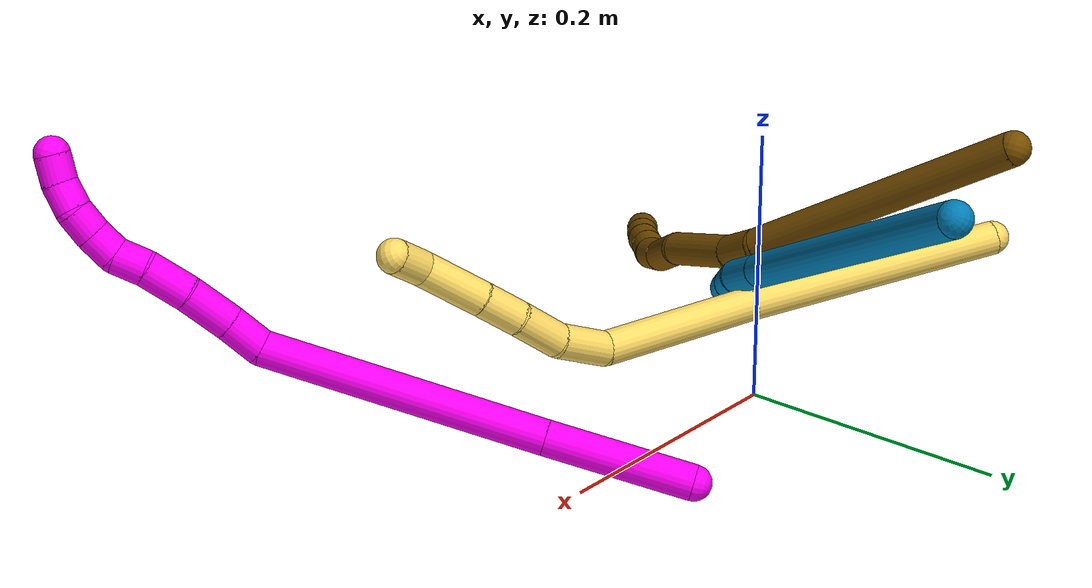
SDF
<sdf version="1.7">
 <world name="default">
  <model name="5">
   <static>0</static>
   <link name="5">
    <collision name="collision-cylinder-e_1_1_4">
     <pose>0.079366 -0.005565 -0.056115 3.04274 0.953058 2.95053</pose>
     <geometry><cylinder><radius>0.0125</radius><length>0.194719</length></cylinder></geometry>
     <surface>
      <friction><ode><mu>1.16</mu><mu2>1.16</mu2><slip1>0</slip1><slip2>0</slip2></ode></friction>
      <contact><ode><kp>1e+06</kp><kd>1</kd><max_vel>0</max_vel><min_depth>0.001</min_depth></ode></contact>
     </surface>
    </collision>
    <visual name="visual-cylinder-e_1_1_4">
     <pose>0.079366 -0.005565 -0.056115 3.04274 0.953058 2.95053</pose>
     <geometry><cylinder><radius>0.0125</radius><length>0.194719</length></cylinder></geometry>
     <material><ambient>1 0.858824 0.4 1</ambient></material>
    </visual>
    <collision name="collision-cylinder-e_2_4_5">
     <pose>0.213165 -0.012029 -0.139384 3.1085 1.10783 3.0881</pose>
     <geometry><cylinder><radius>0.0125</radius><length>0.121674</length></cylinder></geometry>
     <surface>
      <friction><ode><mu>1.16</mu><mu2>1.16</mu2><slip1>0</slip1><slip2>0</slip2></ode></friction>
      <contact><ode><kp>1e+06</kp><kd>1</kd><max_vel>0</max_vel><min_depth>0.001</min_depth></ode></contact>
     </surface>
    </collision>
    <visual name="visual-cylinder-e_2_4_5">
     <pose>0.213165 -0.012029 -0.139384 3.1085 1.10783 3.0881</pose>
     <geometry><cylinder><radius>0.0125</radius><length>0.121674</length></cylinder></geometry>
     <material><ambient>1 0.858824 0.4 1</ambient></material>
    </visual>
    <collision name="collision-cylinder-e_3_5_6">
     <pose>0.286518 -0.020293 -0.169556 1.95944 1.17261 1.56046</pose>
     <geometry><cylinder><radius>0.0125</radius><length>0.041051</length></cylinder></geometry>
     <surface>
      <friction><ode><mu>1.16</mu><mu2>1.16</mu2><slip1>0</slip1><slip2>0</slip2></ode></friction>
      <contact><ode><kp>1e+06</kp><kd>1</kd><max_vel>0</max_vel><min_depth>0.001</min_depth></ode></contact>
     </surface>
    </collision>
    <visual name="visual-cylinder-e_3_5_6">
     <pose>0.286518 -0.020293 -0.169556 1.95944 1.17261 1.56046</pose>
     <geometry><cylinder><radius>0.0125</radius><length>0.041051</length></cylinder></geometry>
     <material><ambient>1 0.858824 0.4 1</ambient></material>
    </visual>
    <collision name="collision-cylinder-e_4_6_7">
     <pose>0.31993 -0.038729 -0.173792 1.68058 0.915542 1.00563</pose>
     <geometry><cylinder><radius>0.0125</radius><length>0.036556</length></cylinder></geometry>
     <surface>
      <friction><ode><mu>1.16</mu><mu2>1.16</mu2><slip1>0</slip1><slip2>0</slip2></ode></friction>
      <contact><ode><kp>1e+06</kp><kd>1</kd><max_vel>0</max_vel><min_depth>0.001</min_depth></ode></contact>
     </surface>
    </collision>
    <visual name="visual-cylinder-e_4_6_7">
     <pose>0.31993 -0.038729 -0.173792 1.68058 0.915542 1.00563</pose>
     <geometry><cylinder><radius>0.0125</radius><length>0.036556</length></cylinder></geometry>
     <material><ambient>1 0.858824 0.4 1</ambient></material>
    </visual>
    <collision name="collision-cylinder-e_5_7_8">
     <pose>0.345734 -0.059718 -0.177914 1.85543 0.830538 1.06368</pose>
     <geometry><cylinder><radius>0.0125</radius><length>0.030642</length></cylinder></geometry>
     <surface>
      <friction><ode><mu>1.16</mu><mu2>1.16</mu2><slip1>0</slip1><slip2>0</slip2></ode></friction>
      <contact><ode><kp>1e+06</kp><kd>1</kd><max_vel>0</max_vel><min_depth>0.001</min_depth></ode></contact>
     </surface>
    </collision>
    <visual name="visual-cylinder-e_5_7_8">
     <pose>0.345734 -0.059718 -0.177914 1.85543 0.830538 1.06368</pose>
     <geometry><cylinder><radius>0.0125</radius><length>0.030642</length></cylinder></geometry>
     <material><ambient>1 0.858824 0.4 1</ambient></material>
    </visual>
    <collision name="collision-cylinder-e_6_8_9">
     <pose>0.374326 -0.085457 -0.186574 1.91984 0.798415 1.08445</pose>
     <geometry><cylinder><radius>0.0125</radius><length>0.048253</length></cylinder></geometry>
     <surface>
      <friction><ode><mu>1.16</mu><mu2>1.16</mu2><slip1>0</slip1><slip2>0</slip2></ode></friction>
      <contact><ode><kp>1e+06</kp><kd>1</kd><max_vel>0</max_vel><min_depth>0.001</min_depth></ode></contact>
     </surface>
    </collision>
    <visual name="visual-cylinder-e_6_8_9">
     <pose>0.374326 -0.085457 -0.186574 1.91984 0.798415 1.08445</pose>
     <geometry><cylinder><radius>0.0125</radius><length>0.048253</length></cylinder></geometry>
     <material><ambient>1 0.858824 0.4 1</ambient></material>
    </visual>
    <collision name="collision-cylinder-e_7_9_2">
     <pose>0.403804 -0.10707 -0.191161 1.37138 1.11972 0.947608</pose>
     <geometry><cylinder><radius>0.0125</radius><length>0.027105</length></cylinder></geometry>
     <surface>
      <friction><ode><mu>1.16</mu><mu2>1.16</mu2><slip1>0</slip1><slip2>0</slip2></ode></friction>
      <contact><ode><kp>1e+06</kp><kd>1</kd><max_vel>0</max_vel><min_depth>0.001</min_depth></ode></contact>
     </surface>
    </collision>
    <visual name="visual-cylinder-e_7_9_2">
     <pose>0.403804 -0.10707 -0.191161 1.37138 1.11972 0.947608</pose>
     <geometry><cylinder><radius>0.0125</radius><length>0.027105</length></cylinder></geometry>
     <material><ambient>1 0.858824 0.4 1</ambient></material>
    </visual>
    <collision name="collision-sphere-2">
     <pose>0.416001 -0.11286 -0.189991 0 -0 0</pose>
     <geometry><sphere><radius>0.0125</radius></sphere></geometry>
     <surface>
      <friction><ode><mu>1.16</mu><mu2>1.16</mu2><slip1>0</slip1><slip2>0</slip2></ode></friction>
      <contact><ode><kp>1e+06</kp><kd>1</kd><max_vel>0</max_vel><min_depth>0.001</min_depth></ode></contact>
     </surface>
    </collision>
    <visual name="visual-sphere-2">
     <pose>0.416001 -0.11286 -0.189991 0 -0 0</pose>
     <geometry><sphere><radius>0.0125</radius></sphere></geometry>
     <material><ambient>1 0.858824 0.4 1</ambient></material>
    </visual>
    <collision name="collision-sphere-9">
     <pose>0.391607 -0.101279 -0.192332 0 -0 0</pose>
     <geometry><sphere><radius>0.0125</radius></sphere></geometry>
     <surface>
      <friction><ode><mu>1.16</mu><mu2>1.16</mu2><slip1>0</slip1><slip2>0</slip2></ode></friction>
      <contact><ode><kp>1e+06</kp><kd>1</kd><max_vel>0</max_vel><min_depth>0.001</min_depth></ode></contact>
     </surface>
    </collision>
    <visual name="visual-sphere-9">
     <pose>0.391607 -0.101279 -0.192332 0 -0 0</pose>
     <geometry><sphere><radius>0.0125</radius></sphere></geometry>
     <material><ambient>1 0.858824 0.4 1</ambient></material>
    </visual>
    <collision name="collision-sphere-4">
     <pose>0.158733 -0.01113 -0.112229 0 -0 0</pose>
     <geometry><sphere><radius>0.0125</radius></sphere></geometry>
     <surface>
      <friction><ode><mu>1.16</mu><mu2>1.16</mu2><slip1>0</slip1><slip2>0</slip2></ode></friction>
      <contact><ode><kp>1e+06</kp><kd>1</kd><max_vel>0</max_vel><min_depth>0.001</min_depth></ode></contact>
     </surface>
    </collision>
    <visual name="visual-sphere-4">
     <pose>0.158733 -0.01113 -0.112229 0 -0 0</pose>
     <geometry><sphere><radius>0.0125</radius></sphere></geometry>
     <material><ambient>1 0.858824 0.4 1</ambient></material>
    </visual>
    <collision name="collision-sphere-1">
     <geometry><sphere><radius>0.0125</radius></sphere></geometry>
     <surface>
      <friction><ode><mu>1.16</mu><mu2>1.16</mu2><slip1>0</slip1><slip2>0</slip2></ode></friction>
      <contact><ode><kp>1e+06</kp><kd>1</kd><max_vel>0</max_vel><min_depth>0.001</min_depth></ode></contact>
     </surface>
    </collision>
    <visual name="visual-sphere-1">
     <geometry><sphere><radius>0.0125</radius></sphere></geometry>
     <material><ambient>1 0.858824 0.4 1</ambient></material>
    </visual>
    <collision name="collision-sphere-8">
     <pose>0.357046 -0.069636 -0.180816 0 -0 0</pose>
     <geometry><sphere><radius>0.0125</radius></sphere></geometry>
     <surface>
      <friction><ode><mu>1.16</mu><mu2>1.16</mu2><slip1>0</slip1><slip2>0</slip2></ode></friction>
      <contact><ode><kp>1e+06</kp><kd>1</kd><max_vel>0</max_vel><min_depth>0.001</min_depth></ode></contact>
     </surface>
    </collision>
    <visual name="visual-sphere-8">
     <pose>0.357046 -0.069636 -0.180816 0 -0 0</pose>
     <geometry><sphere><radius>0.0125</radius></sphere></geometry>
     <material><ambient>1 0.858824 0.4 1</ambient></material>
    </visual>
    <collision name="collision-sphere-5">
     <pose>0.267598 -0.012928 -0.16654 0 -0 0</pose>
     <geometry><sphere><radius>0.0125</radius></sphere></geometry>
     <surface>
      <friction><ode><mu>1.16</mu><mu2>1.16</mu2><slip1>0</slip1><slip2>0</slip2></ode></friction>
      <contact><ode><kp>1e+06</kp><kd>1</kd><max_vel>0</max_vel><min_depth>0.001</min_depth></ode></contact>
     </surface>
    </collision>
    <visual name="visual-sphere-5">
     <pose>0.267598 -0.012928 -0.16654 0 -0 0</pose>
     <geometry><sphere><radius>0.0125</radius></sphere></geometry>
     <material><ambient>1 0.858824 0.4 1</ambient></material>
    </visual>
    <collision name="collision-sphere-6">
     <pose>0.305437 -0.027658 -0.172571 0 -0 0</pose>
     <geometry><sphere><radius>0.0125</radius></sphere></geometry>
     <surface>
      <friction><ode><mu>1.16</mu><mu2>1.16</mu2><slip1>0</slip1><slip2>0</slip2></ode></friction>
      <contact><ode><kp>1e+06</kp><kd>1</kd><max_vel>0</max_vel><min_depth>0.001</min_depth></ode></contact>
     </surface>
    </collision>
    <visual name="visual-sphere-6">
     <pose>0.305437 -0.027658 -0.172571 0 -0 0</pose>
     <geometry><sphere><radius>0.0125</radius></sphere></geometry>
     <material><ambient>1 0.858824 0.4 1</ambient></material>
    </visual>
    <collision name="collision-sphere-7">
     <pose>0.334423 -0.0498 -0.175012 0 -0 0</pose>
     <geometry><sphere><radius>0.0125</radius></sphere></geometry>
     <surface>
      <friction><ode><mu>1.16</mu><mu2>1.16</mu2><slip1>0</slip1><slip2>0</slip2></ode></friction>
      <contact><ode><kp>1e+06</kp><kd>1</kd><max_vel>0</max_vel><min_depth>0.001</min_depth></ode></contact>
     </surface>
    </collision>
    <visual name="visual-sphere-7">
     <pose>0.334423 -0.0498 -0.175012 0 -0 0</pose>
     <geometry><sphere><radius>0.0125</radius></sphere></geometry>
     <material><ambient>1 0.858824 0.4 1</ambient></material>
    </visual>
    <inertial>
     <pose>0.208899 -0.027303 -0.121671 0 -0 0</pose>
     <mass>0.5</mass>
     <inertia>
      <ixx>-0.000295</ixx>
      <ixy>0</ixy>
      <ixz>0</ixz>
      <iyy>0.00087</iyy>
      <iyz>0</iyz>
      <izz>-0.000631</izz>
     </inertia>
    </inertial>
   </link>
   <pose>-0.174158 0.088007 0.09219 -0.99868 -0.160766 0.008461</pose>
  </model>
  <model name="9">
   <static>0</static>
   <link name="9">
    <collision name="collision-cylinder-e_1_1_4">
     <pose>-0.093257 -0.055181 0.081047 0.597757 -0.760359 -0.245019</pose>
     <geometry><cylinder><radius>0.0125</radius><length>0.270632</length></cylinder></geometry>
     <surface>
      <friction><ode><mu>1.16</mu><mu2>1.16</mu2><slip1>0</slip1><slip2>0</slip2></ode></friction>
      <contact><ode><kp>1e+06</kp><kd>1</kd><max_vel>0</max_vel><min_depth>0.001</min_depth></ode></contact>
     </surface>
    </collision>
    <visual name="visual-cylinder-e_1_1_4">
     <pose>-0.093257 -0.055181 0.081047 0.597757 -0.760359 -0.245019</pose>
     <geometry><cylinder><radius>0.0125</radius><length>0.270632</length></cylinder></geometry>
     <material><ambient>0 0.490196 0.709804 1</ambient></material>
    </visual>
    <collision name="collision-cylinder-e_2_4_5">
     <pose>-0.199658 -0.118442 0.174221 0.587755 -0.733871 -0.231594</pose>
     <geometry><cylinder><radius>0.0125</radius><length>0.039248</length></cylinder></geometry>
     <surface>
      <friction><ode><mu>1.16</mu><mu2>1.16</mu2><slip1>0</slip1><slip2>0</slip2></ode></friction>
      <contact><ode><kp>1e+06</kp><kd>1</kd><max_vel>0</max_vel><min_depth>0.001</min_depth></ode></contact>
     </surface>
    </collision>
    <visual name="visual-cylinder-e_2_4_5">
     <pose>-0.199658 -0.118442 0.174221 0.587755 -0.733871 -0.231594</pose>
     <geometry><cylinder><radius>0.0125</radius><length>0.039248</length></cylinder></geometry>
     <material><ambient>0 0.490196 0.709804 1</ambient></material>
    </visual>
    <collision name="collision-cylinder-e_3_5_6">
     <pose>-0.219893 -0.130838 0.197973 0.35548 -0.519528 -0.095411</pose>
     <geometry><cylinder><radius>0.0125</radius><length>0.02857</length></cylinder></geometry>
     <surface>
      <friction><ode><mu>1.16</mu><mu2>1.16</mu2><slip1>0</slip1><slip2>0</slip2></ode></friction>
      <contact><ode><kp>1e+06</kp><kd>1</kd><max_vel>0</max_vel><min_depth>0.001</min_depth></ode></contact>
     </surface>
    </collision>
    <visual name="visual-cylinder-e_3_5_6">
     <pose>-0.219893 -0.130838 0.197973 0.35548 -0.519528 -0.095411</pose>
     <geometry><cylinder><radius>0.0125</radius><length>0.02857</length></cylinder></geometry>
     <material><ambient>0 0.490196 0.709804 1</ambient></material>
    </visual>
    <collision name="collision-cylinder-e_4_6_7">
     <pose>-0.236363 -0.14402 0.229593 0.417394 -0.405063 -0.086922</pose>
     <geometry><cylinder><radius>0.0125</radius><length>0.047597</length></cylinder></geometry>
     <surface>
      <friction><ode><mu>1.16</mu><mu2>1.16</mu2><slip1>0</slip1><slip2>0</slip2></ode></friction>
      <contact><ode><kp>1e+06</kp><kd>1</kd><max_vel>0</max_vel><min_depth>0.001</min_depth></ode></contact>
     </surface>
    </collision>
    <visual name="visual-cylinder-e_4_6_7">
     <pose>-0.236363 -0.14402 0.229593 0.417394 -0.405063 -0.086922</pose>
     <geometry><cylinder><radius>0.0125</radius><length>0.047597</length></cylinder></geometry>
     <material><ambient>0 0.490196 0.709804 1</ambient></material>
    </visual>
    <collision name="collision-cylinder-e_5_7_8">
     <pose>-0.246724 -0.167036 0.271068 0.582469 -0.038179 -0.011446</pose>
     <geometry><cylinder><radius>0.0125</radius><length>0.05148</length></cylinder></geometry>
     <surface>
      <friction><ode><mu>1.16</mu><mu2>1.16</mu2><slip1>0</slip1><slip2>0</slip2></ode></friction>
      <contact><ode><kp>1e+06</kp><kd>1</kd><max_vel>0</max_vel><min_depth>0.001</min_depth></ode></contact>
     </surface>
    </collision>
    <visual name="visual-cylinder-e_5_7_8">
     <pose>-0.246724 -0.167036 0.271068 0.582469 -0.038179 -0.011446</pose>
     <geometry><cylinder><radius>0.0125</radius><length>0.05148</length></cylinder></geometry>
     <material><ambient>0 0.490196 0.709804 1</ambient></material>
    </visual>
    <collision name="collision-cylinder-e_6_8_2">
     <pose>-0.249366 -0.19869 0.318365 0.595824 -0.053151 -0.016324</pose>
     <geometry><cylinder><radius>0.0125</radius><length>0.062473</length></cylinder></geometry>
     <surface>
      <friction><ode><mu>1.16</mu><mu2>1.16</mu2><slip1>0</slip1><slip2>0</slip2></ode></friction>
      <contact><ode><kp>1e+06</kp><kd>1</kd><max_vel>0</max_vel><min_depth>0.001</min_depth></ode></contact>
     </surface>
    </collision>
    <visual name="visual-cylinder-e_6_8_2">
     <pose>-0.249366 -0.19869 0.318365 0.595824 -0.053151 -0.016324</pose>
     <geometry><cylinder><radius>0.0125</radius><length>0.062473</length></cylinder></geometry>
     <material><ambient>0 0.490196 0.709804 1</ambient></material>
    </visual>
    <collision name="collision-sphere-2">
     <pose>-0.251026 -0.216195 0.344182 0 -0 0</pose>
     <geometry><sphere><radius>0.0125</radius></sphere></geometry>
     <surface>
      <friction><ode><mu>1.16</mu><mu2>1.16</mu2><slip1>0</slip1><slip2>0</slip2></ode></friction>
      <contact><ode><kp>1e+06</kp><kd>1</kd><max_vel>0</max_vel><min_depth>0.001</min_depth></ode></contact>
     </surface>
    </collision>
    <visual name="visual-sphere-2">
     <pose>-0.251026 -0.216195 0.344182 0 -0 0</pose>
     <geometry><sphere><radius>0.0125</radius></sphere></geometry>
     <material><ambient>0 0.490196 0.709804 1</ambient></material>
    </visual>
    <collision name="collision-sphere-4">
     <pose>-0.186515 -0.110361 0.162094 0 -0 0</pose>
     <geometry><sphere><radius>0.0125</radius></sphere></geometry>
     <surface>
      <friction><ode><mu>1.16</mu><mu2>1.16</mu2><slip1>0</slip1><slip2>0</slip2></ode></friction>
      <contact><ode><kp>1e+06</kp><kd>1</kd><max_vel>0</max_vel><min_depth>0.001</min_depth></ode></contact>
     </surface>
    </collision>
    <visual name="visual-sphere-4">
     <pose>-0.186515 -0.110361 0.162094 0 -0 0</pose>
     <geometry><sphere><radius>0.0125</radius></sphere></geometry>
     <material><ambient>0 0.490196 0.709804 1</ambient></material>
    </visual>
    <collision name="collision-sphere-1">
     <geometry><sphere><radius>0.0125</radius></sphere></geometry>
     <surface>
      <friction><ode><mu>1.16</mu><mu2>1.16</mu2><slip1>0</slip1><slip2>0</slip2></ode></friction>
      <contact><ode><kp>1e+06</kp><kd>1</kd><max_vel>0</max_vel><min_depth>0.001</min_depth></ode></contact>
     </surface>
    </collision>
    <visual name="visual-sphere-1">
     <geometry><sphere><radius>0.0125</radius></sphere></geometry>
     <material><ambient>0 0.490196 0.709804 1</ambient></material>
    </visual>
    <collision name="collision-sphere-8">
     <pose>-0.247707 -0.181185 0.292548 0 -0 0</pose>
     <geometry><sphere><radius>0.0125</radius></sphere></geometry>
     <surface>
      <friction><ode><mu>1.16</mu><mu2>1.16</mu2><slip1>0</slip1><slip2>0</slip2></ode></friction>
      <contact><ode><kp>1e+06</kp><kd>1</kd><max_vel>0</max_vel><min_depth>0.001</min_depth></ode></contact>
     </surface>
    </collision>
    <visual name="visual-sphere-8">
     <pose>-0.247707 -0.181185 0.292548 0 -0 0</pose>
     <geometry><sphere><radius>0.0125</radius></sphere></geometry>
     <material><ambient>0 0.490196 0.709804 1</ambient></material>
    </visual>
    <collision name="collision-sphere-5">
     <pose>-0.212801 -0.126522 0.186348 0 -0 0</pose>
     <geometry><sphere><radius>0.0125</radius></sphere></geometry>
     <surface>
      <friction><ode><mu>1.16</mu><mu2>1.16</mu2><slip1>0</slip1><slip2>0</slip2></ode></friction>
      <contact><ode><kp>1e+06</kp><kd>1</kd><max_vel>0</max_vel><min_depth>0.001</min_depth></ode></contact>
     </surface>
    </collision>
    <visual name="visual-sphere-5">
     <pose>-0.212801 -0.126522 0.186348 0 -0 0</pose>
     <geometry><sphere><radius>0.0125</radius></sphere></geometry>
     <material><ambient>0 0.490196 0.709804 1</ambient></material>
    </visual>
    <collision name="collision-sphere-6">
     <pose>-0.226985 -0.135154 0.209598 0 -0 0</pose>
     <geometry><sphere><radius>0.0125</radius></sphere></geometry>
     <surface>
      <friction><ode><mu>1.16</mu><mu2>1.16</mu2><slip1>0</slip1><slip2>0</slip2></ode></friction>
      <contact><ode><kp>1e+06</kp><kd>1</kd><max_vel>0</max_vel><min_depth>0.001</min_depth></ode></contact>
     </surface>
    </collision>
    <visual name="visual-sphere-6">
     <pose>-0.226985 -0.135154 0.209598 0 -0 0</pose>
     <geometry><sphere><radius>0.0125</radius></sphere></geometry>
     <material><ambient>0 0.490196 0.709804 1</ambient></material>
    </visual>
    <collision name="collision-sphere-7">
     <pose>-0.245742 -0.152887 0.249588 0 -0 0</pose>
     <geometry><sphere><radius>0.0125</radius></sphere></geometry>
     <surface>
      <friction><ode><mu>1.16</mu><mu2>1.16</mu2><slip1>0</slip1><slip2>0</slip2></ode></friction>
      <contact><ode><kp>1e+06</kp><kd>1</kd><max_vel>0</max_vel><min_depth>0.001</min_depth></ode></contact>
     </surface>
    </collision>
    <visual name="visual-sphere-7">
     <pose>-0.245742 -0.152887 0.249588 0 -0 0</pose>
     <geometry><sphere><radius>0.0125</radius></sphere></geometry>
     <material><ambient>0 0.490196 0.709804 1</ambient></material>
    </visual>
    <inertial>
     <pose>-0.157774 -0.102374 0.158399 0 -0 0</pose>
     <mass>0.5</mass>
     <inertia>
      <ixx>0.000907</ixx>
      <ixy>0</ixy>
      <ixz>0</ixz>
      <iyy>0.001226</iyy>
      <iyz>0</iyz>
      <izz>0.00189</izz>
     </inertia>
    </inertial>
   </link>
   <pose>0.104445 0.219291 0.224879 -2.30505 -0.586104 2.07291</pose>
  </model>
  <model name="10">
   <static>0</static>
   <link name="10">
    <collision name="collision-cylinder-e_1_1_4">
     <pose>-0.000775 0.00071 0.05205 -0.013639 -0.014893 0.000102</pose>
     <geometry><cylinder><radius>0.0125</radius><length>0.104122</length></cylinder></geometry>
     <surface>
      <friction><ode><mu>1.16</mu><mu2>1.16</mu2><slip1>0</slip1><slip2>0</slip2></ode></friction>
      <contact><ode><kp>1e+06</kp><kd>1</kd><max_vel>0</max_vel><min_depth>0.001</min_depth></ode></contact>
     </surface>
    </collision>
    <visual name="visual-cylinder-e_1_1_4">
     <pose>-0.000775 0.00071 0.05205 -0.013639 -0.014893 0.000102</pose>
     <geometry><cylinder><radius>0.0125</radius><length>0.104122</length></cylinder></geometry>
     <material><ambient>1 0 0.964706 1</ambient></material>
    </visual>
    <collision name="collision-cylinder-e_2_4_5">
     <pose>0.000651 -0.006798 0.203765 0.082268 0.02201 0.000906</pose>
     <geometry><cylinder><radius>0.0125</radius><length>0.200054</length></cylinder></geometry>
     <surface>
      <friction><ode><mu>1.16</mu><mu2>1.16</mu2><slip1>0</slip1><slip2>0</slip2></ode></friction>
      <contact><ode><kp>1e+06</kp><kd>1</kd><max_vel>0</max_vel><min_depth>0.001</min_depth></ode></contact>
     </surface>
    </collision>
    <visual name="visual-cylinder-e_2_4_5">
     <pose>0.000651 -0.006798 0.203765 0.082268 0.02201 0.000906</pose>
     <geometry><cylinder><radius>0.0125</radius><length>0.200054</length></cylinder></geometry>
     <material><ambient>1 0 0.964706 1</ambient></material>
    </visual>
    <collision name="collision-cylinder-e_3_5_6">
     <pose>0.008456 -0.01756 0.315729 0.204009 0.419653 0.04359</pose>
     <geometry><cylinder><radius>0.0125</radius><length>0.027505</length></cylinder></geometry>
     <surface>
      <friction><ode><mu>1.16</mu><mu2>1.16</mu2><slip1>0</slip1><slip2>0</slip2></ode></friction>
      <contact><ode><kp>1e+06</kp><kd>1</kd><max_vel>0</max_vel><min_depth>0.001</min_depth></ode></contact>
     </surface>
    </collision>
    <visual name="visual-cylinder-e_3_5_6">
     <pose>0.008456 -0.01756 0.315729 0.204009 0.419653 0.04359</pose>
     <geometry><cylinder><radius>0.0125</radius><length>0.027505</length></cylinder></geometry>
     <material><ambient>1 0 0.964706 1</ambient></material>
    </visual>
    <collision name="collision-cylinder-e_4_6_7">
     <pose>0.020532 -0.024957 0.343167 0.310195 0.386646 0.061199</pose>
     <geometry><cylinder><radius>0.0125</radius><length>0.034331</length></cylinder></geometry>
     <surface>
      <friction><ode><mu>1.16</mu><mu2>1.16</mu2><slip1>0</slip1><slip2>0</slip2></ode></friction>
      <contact><ode><kp>1e+06</kp><kd>1</kd><max_vel>0</max_vel><min_depth>0.001</min_depth></ode></contact>
     </surface>
    </collision>
    <visual name="visual-cylinder-e_4_6_7">
     <pose>0.020532 -0.024957 0.343167 0.310195 0.386646 0.061199</pose>
     <geometry><cylinder><radius>0.0125</radius><length>0.034331</length></cylinder></geometry>
     <material><ambient>1 0 0.964706 1</ambient></material>
    </visual>
    <collision name="collision-cylinder-e_5_7_8">
     <pose>0.03172 -0.033177 0.373344 0.220277 0.296978 0.033082</pose>
     <geometry><cylinder><radius>0.0125</radius><length>0.032229</length></cylinder></geometry>
     <surface>
      <friction><ode><mu>1.16</mu><mu2>1.16</mu2><slip1>0</slip1><slip2>0</slip2></ode></friction>
      <contact><ode><kp>1e+06</kp><kd>1</kd><max_vel>0</max_vel><min_depth>0.001</min_depth></ode></contact>
     </surface>
    </collision>
    <visual name="visual-cylinder-e_5_7_8">
     <pose>0.03172 -0.033177 0.373344 0.220277 0.296978 0.033082</pose>
     <geometry><cylinder><radius>0.0125</radius><length>0.032229</length></cylinder></geometry>
     <material><ambient>1 0 0.964706 1</ambient></material>
    </visual>
    <collision name="collision-cylinder-e_6_8_9">
     <pose>0.037873 -0.038014 0.399053 0.136824 0.132559 0.009096</pose>
     <geometry><cylinder><radius>0.0125</radius><length>0.021737</length></cylinder></geometry>
     <surface>
      <friction><ode><mu>1.16</mu><mu2>1.16</mu2><slip1>0</slip1><slip2>0</slip2></ode></friction>
      <contact><ode><kp>1e+06</kp><kd>1</kd><max_vel>0</max_vel><min_depth>0.001</min_depth></ode></contact>
     </surface>
    </collision>
    <visual name="visual-cylinder-e_6_8_9">
     <pose>0.037873 -0.038014 0.399053 0.136824 0.132559 0.009096</pose>
     <geometry><cylinder><radius>0.0125</radius><length>0.021737</length></cylinder></geometry>
     <material><ambient>1 0 0.964706 1</ambient></material>
    </visual>
    <collision name="collision-cylinder-e_7_9_10">
     <pose>0.04403 -0.040103 0.41853 0.070289 0.491159 0.017624</pose>
     <geometry><cylinder><radius>0.0125</radius><length>0.020018</length></cylinder></geometry>
     <surface>
      <friction><ode><mu>1.16</mu><mu2>1.16</mu2><slip1>0</slip1><slip2>0</slip2></ode></friction>
      <contact><ode><kp>1e+06</kp><kd>1</kd><max_vel>0</max_vel><min_depth>0.001</min_depth></ode></contact>
     </surface>
    </collision>
    <visual name="visual-cylinder-e_7_9_10">
     <pose>0.04403 -0.040103 0.41853 0.070289 0.491159 0.017624</pose>
     <geometry><cylinder><radius>0.0125</radius><length>0.020018</length></cylinder></geometry>
     <material><ambient>1 0 0.964706 1</ambient></material>
    </visual>
    <collision name="collision-cylinder-e_8_10_11">
     <pose>0.054707 -0.042171 0.435237 0.181292 0.637951 0.060019</pose>
     <geometry><cylinder><radius>0.0125</radius><length>0.020003</length></cylinder></geometry>
     <surface>
      <friction><ode><mu>1.16</mu><mu2>1.16</mu2><slip1>0</slip1><slip2>0</slip2></ode></friction>
      <contact><ode><kp>1e+06</kp><kd>1</kd><max_vel>0</max_vel><min_depth>0.001</min_depth></ode></contact>
     </surface>
    </collision>
    <visual name="visual-cylinder-e_8_10_11">
     <pose>0.054707 -0.042171 0.435237 0.181292 0.637951 0.060019</pose>
     <geometry><cylinder><radius>0.0125</radius><length>0.020003</length></cylinder></geometry>
     <material><ambient>1 0 0.964706 1</ambient></material>
    </visual>
    <collision name="collision-cylinder-e_9_11_12">
     <pose>0.067703 -0.042484 0.45015 -0.16061 0.780917 -0.066224</pose>
     <geometry><cylinder><radius>0.0125</radius><length>0.02</length></cylinder></geometry>
     <surface>
      <friction><ode><mu>1.16</mu><mu2>1.16</mu2><slip1>0</slip1><slip2>0</slip2></ode></friction>
      <contact><ode><kp>1e+06</kp><kd>1</kd><max_vel>0</max_vel><min_depth>0.001</min_depth></ode></contact>
     </surface>
    </collision>
    <visual name="visual-cylinder-e_9_11_12">
     <pose>0.067703 -0.042484 0.45015 -0.16061 0.780917 -0.066224</pose>
     <geometry><cylinder><radius>0.0125</radius><length>0.02</length></cylinder></geometry>
     <material><ambient>1 0 0.964706 1</ambient></material>
    </visual>
    <collision name="collision-cylinder-e_10_12_2">
     <pose>0.083363 -0.041179 0.462226 -0.033474 1.0394 -0.019154</pose>
     <geometry><cylinder><radius>0.0125</radius><length>0.02</length></cylinder></geometry>
     <surface>
      <friction><ode><mu>1.16</mu><mu2>1.16</mu2><slip1>0</slip1><slip2>0</slip2></ode></friction>
      <contact><ode><kp>1e+06</kp><kd>1</kd><max_vel>0</max_vel><min_depth>0.001</min_depth></ode></contact>
     </surface>
    </collision>
    <visual name="visual-cylinder-e_10_12_2">
     <pose>0.083363 -0.041179 0.462226 -0.033474 1.0394 -0.019154</pose>
     <geometry><cylinder><radius>0.0125</radius><length>0.02</length></cylinder></geometry>
     <material><ambient>1 0 0.964706 1</ambient></material>
    </visual>
    <collision name="collision-sphere-2">
     <pose>0.091984 -0.041009 0.467291 0 -0 0</pose>
     <geometry><sphere><radius>0.0125</radius></sphere></geometry>
     <surface>
      <friction><ode><mu>1.16</mu><mu2>1.16</mu2><slip1>0</slip1><slip2>0</slip2></ode></friction>
      <contact><ode><kp>1e+06</kp><kd>1</kd><max_vel>0</max_vel><min_depth>0.001</min_depth></ode></contact>
     </surface>
    </collision>
    <visual name="visual-sphere-2">
     <pose>0.091984 -0.041009 0.467291 0 -0 0</pose>
     <geometry><sphere><radius>0.0125</radius></sphere></geometry>
     <material><ambient>1 0 0.964706 1</ambient></material>
    </visual>
    <collision name="collision-sphere-12">
     <pose>0.074742 -0.041348 0.457162 0 -0 0</pose>
     <geometry><sphere><radius>0.0125</radius></sphere></geometry>
     <surface>
      <friction><ode><mu>1.16</mu><mu2>1.16</mu2><slip1>0</slip1><slip2>0</slip2></ode></friction>
      <contact><ode><kp>1e+06</kp><kd>1</kd><max_vel>0</max_vel><min_depth>0.001</min_depth></ode></contact>
     </surface>
    </collision>
    <visual name="visual-sphere-12">
     <pose>0.074742 -0.041348 0.457162 0 -0 0</pose>
     <geometry><sphere><radius>0.0125</radius></sphere></geometry>
     <material><ambient>1 0 0.964706 1</ambient></material>
    </visual>
    <collision name="collision-sphere-11">
     <pose>0.060663 -0.04362 0.443139 0 -0 0</pose>
     <geometry><sphere><radius>0.0125</radius></sphere></geometry>
     <surface>
      <friction><ode><mu>1.16</mu><mu2>1.16</mu2><slip1>0</slip1><slip2>0</slip2></ode></friction>
      <contact><ode><kp>1e+06</kp><kd>1</kd><max_vel>0</max_vel><min_depth>0.001</min_depth></ode></contact>
     </surface>
    </collision>
    <visual name="visual-sphere-11">
     <pose>0.060663 -0.04362 0.443139 0 -0 0</pose>
     <geometry><sphere><radius>0.0125</radius></sphere></geometry>
     <material><ambient>1 0 0.964706 1</ambient></material>
    </visual>
    <collision name="collision-sphere-10">
     <pose>0.048751 -0.040723 0.427334 0 -0 0</pose>
     <geometry><sphere><radius>0.0125</radius></sphere></geometry>
     <surface>
      <friction><ode><mu>1.16</mu><mu2>1.16</mu2><slip1>0</slip1><slip2>0</slip2></ode></friction>
      <contact><ode><kp>1e+06</kp><kd>1</kd><max_vel>0</max_vel><min_depth>0.001</min_depth></ode></contact>
     </surface>
    </collision>
    <visual name="visual-sphere-10">
     <pose>0.048751 -0.040723 0.427334 0 -0 0</pose>
     <geometry><sphere><radius>0.0125</radius></sphere></geometry>
     <material><ambient>1 0 0.964706 1</ambient></material>
    </visual>
    <collision name="collision-sphere-9">
     <pose>0.039309 -0.039483 0.409726 0 -0 0</pose>
     <geometry><sphere><radius>0.0125</radius></sphere></geometry>
     <surface>
      <friction><ode><mu>1.16</mu><mu2>1.16</mu2><slip1>0</slip1><slip2>0</slip2></ode></friction>
      <contact><ode><kp>1e+06</kp><kd>1</kd><max_vel>0</max_vel><min_depth>0.001</min_depth></ode></contact>
     </surface>
    </collision>
    <visual name="visual-sphere-9">
     <pose>0.039309 -0.039483 0.409726 0 -0 0</pose>
     <geometry><sphere><radius>0.0125</radius></sphere></geometry>
     <material><ambient>1 0 0.964706 1</ambient></material>
    </visual>
    <collision name="collision-sphere-4">
     <pose>-0.001551 0.00142 0.104101 0 -0 0</pose>
     <geometry><sphere><radius>0.0125</radius></sphere></geometry>
     <surface>
      <friction><ode><mu>1.16</mu><mu2>1.16</mu2><slip1>0</slip1><slip2>0</slip2></ode></friction>
      <contact><ode><kp>1e+06</kp><kd>1</kd><max_vel>0</max_vel><min_depth>0.001</min_depth></ode></contact>
     </surface>
    </collision>
    <visual name="visual-sphere-4">
     <pose>-0.001551 0.00142 0.104101 0 -0 0</pose>
     <geometry><sphere><radius>0.0125</radius></sphere></geometry>
     <material><ambient>1 0 0.964706 1</ambient></material>
    </visual>
    <collision name="collision-sphere-1">
     <geometry><sphere><radius>0.0125</radius></sphere></geometry>
     <surface>
      <friction><ode><mu>1.16</mu><mu2>1.16</mu2><slip1>0</slip1><slip2>0</slip2></ode></friction>
      <contact><ode><kp>1e+06</kp><kd>1</kd><max_vel>0</max_vel><min_depth>0.001</min_depth></ode></contact>
     </surface>
    </collision>
    <visual name="visual-sphere-1">
     <geometry><sphere><radius>0.0125</radius></sphere></geometry>
     <material><ambient>1 0 0.964706 1</ambient></material>
    </visual>
    <collision name="collision-sphere-8">
     <pose>0.036436 -0.036544 0.38838 0 -0 0</pose>
     <geometry><sphere><radius>0.0125</radius></sphere></geometry>
     <surface>
      <friction><ode><mu>1.16</mu><mu2>1.16</mu2><slip1>0</slip1><slip2>0</slip2></ode></friction>
      <contact><ode><kp>1e+06</kp><kd>1</kd><max_vel>0</max_vel><min_depth>0.001</min_depth></ode></contact>
     </surface>
    </collision>
    <visual name="visual-sphere-8">
     <pose>0.036436 -0.036544 0.38838 0 -0 0</pose>
     <geometry><sphere><radius>0.0125</radius></sphere></geometry>
     <material><ambient>1 0 0.964706 1</ambient></material>
    </visual>
    <collision name="collision-sphere-5">
     <pose>0.002852 -0.015016 0.30343 0 -0 0</pose>
     <geometry><sphere><radius>0.0125</radius></sphere></geometry>
     <surface>
      <friction><ode><mu>1.16</mu><mu2>1.16</mu2><slip1>0</slip1><slip2>0</slip2></ode></friction>
      <contact><ode><kp>1e+06</kp><kd>1</kd><max_vel>0</max_vel><min_depth>0.001</min_depth></ode></contact>
     </surface>
    </collision>
    <visual name="visual-sphere-5">
     <pose>0.002852 -0.015016 0.30343 0 -0 0</pose>
     <geometry><sphere><radius>0.0125</radius></sphere></geometry>
     <material><ambient>1 0 0.964706 1</ambient></material>
    </visual>
    <collision name="collision-sphere-6">
     <pose>0.014059 -0.020104 0.328028 0 -0 0</pose>
     <geometry><sphere><radius>0.0125</radius></sphere></geometry>
     <surface>
      <friction><ode><mu>1.16</mu><mu2>1.16</mu2><slip1>0</slip1><slip2>0</slip2></ode></friction>
      <contact><ode><kp>1e+06</kp><kd>1</kd><max_vel>0</max_vel><min_depth>0.001</min_depth></ode></contact>
     </surface>
    </collision>
    <visual name="visual-sphere-6">
     <pose>0.014059 -0.020104 0.328028 0 -0 0</pose>
     <geometry><sphere><radius>0.0125</radius></sphere></geometry>
     <material><ambient>1 0 0.964706 1</ambient></material>
    </visual>
    <collision name="collision-sphere-7">
     <pose>0.027005 -0.02981 0.358307 0 -0 0</pose>
     <geometry><sphere><radius>0.0125</radius></sphere></geometry>
     <surface>
      <friction><ode><mu>1.16</mu><mu2>1.16</mu2><slip1>0</slip1><slip2>0</slip2></ode></friction>
      <contact><ode><kp>1e+06</kp><kd>1</kd><max_vel>0</max_vel><min_depth>0.001</min_depth></ode></contact>
     </surface>
    </collision>
    <visual name="visual-sphere-7">
     <pose>0.027005 -0.02981 0.358307 0 -0 0</pose>
     <geometry><sphere><radius>0.0125</radius></sphere></geometry>
     <material><ambient>1 0 0.964706 1</ambient></material>
    </visual>
    <inertial>
     <pose>0.015659 -0.015682 0.245376 0 -0 0</pose>
     <mass>0.5</mass>
     <inertia>
      <ixx>0.000798</ixx>
      <ixy>0</ixy>
      <ixz>0</ixz>
      <iyy>0.000787</iyy>
      <iyz>0</iyz>
      <izz>7.2e-05</izz>
     </inertia>
    </inertial>
   </link>
   <pose>0.157153 0.063298 0.011498 -0.714922 -1.22768 2.8394</pose>
  </model>
  <model name="12">
   <static>0</static>
   <link name="12">
    <collision name="collision-cylinder-e_1_1_4">
     <pose>0.00863 -0.103271 0.044714 1.16219 0.076534 0.050276</pose>
     <geometry><cylinder><radius>0.0125</radius><length>0.225733</length></cylinder></geometry>
     <surface>
      <friction><ode><mu>1.16</mu><mu2>1.16</mu2><slip1>0</slip1><slip2>0</slip2></ode></friction>
      <contact><ode><kp>1e+06</kp><kd>1</kd><max_vel>0</max_vel><min_depth>0.001</min_depth></ode></contact>
     </surface>
    </collision>
    <visual name="visual-cylinder-e_1_1_4">
     <pose>0.00863 -0.103271 0.044714 1.16219 0.076534 0.050276</pose>
     <geometry><cylinder><radius>0.0125</radius><length>0.225733</length></cylinder></geometry>
     <material><ambient>0.466667 0.301961 0 1</ambient></material>
    </visual>
    <collision name="collision-cylinder-e_2_4_5">
     <pose>0.023394 -0.223123 0.092266 1.40129 0.349682 0.295785</pose>
     <geometry><cylinder><radius>0.0125</radius><length>0.03581</length></cylinder></geometry>
     <surface>
      <friction><ode><mu>1.16</mu><mu2>1.16</mu2><slip1>0</slip1><slip2>0</slip2></ode></friction>
      <contact><ode><kp>1e+06</kp><kd>1</kd><max_vel>0</max_vel><min_depth>0.001</min_depth></ode></contact>
     </surface>
    </collision>
    <visual name="visual-cylinder-e_2_4_5">
     <pose>0.023394 -0.223123 0.092266 1.40129 0.349682 0.295785</pose>
     <geometry><cylinder><radius>0.0125</radius><length>0.03581</length></cylinder></geometry>
     <material><ambient>0.466667 0.301961 0 1</ambient></material>
    </visual>
    <collision name="collision-cylinder-e_3_5_6">
     <pose>0.037657 -0.272412 0.095235 1.56677 0.243591 0.242622</pose>
     <geometry><cylinder><radius>0.0125</radius><length>0.067407</length></cylinder></geometry>
     <surface>
      <friction><ode><mu>1.16</mu><mu2>1.16</mu2><slip1>0</slip1><slip2>0</slip2></ode></friction>
      <contact><ode><kp>1e+06</kp><kd>1</kd><max_vel>0</max_vel><min_depth>0.001</min_depth></ode></contact>
     </surface>
    </collision>
    <visual name="visual-cylinder-e_3_5_6">
     <pose>0.037657 -0.272412 0.095235 1.56677 0.243591 0.242622</pose>
     <geometry><cylinder><radius>0.0125</radius><length>0.067407</length></cylinder></geometry>
     <material><ambient>0.466667 0.301961 0 1</ambient></material>
    </visual>
    <collision name="collision-cylinder-e_4_6_7">
     <pose>0.064754 -0.328946 0.094903 1.5903 0.672282 0.684519</pose>
     <geometry><cylinder><radius>0.0125</radius><length>0.060915</length></cylinder></geometry>
     <surface>
      <friction><ode><mu>1.16</mu><mu2>1.16</mu2><slip1>0</slip1><slip2>0</slip2></ode></friction>
      <contact><ode><kp>1e+06</kp><kd>1</kd><max_vel>0</max_vel><min_depth>0.001</min_depth></ode></contact>
     </surface>
    </collision>
    <visual name="visual-cylinder-e_4_6_7">
     <pose>0.064754 -0.328946 0.094903 1.5903 0.672282 0.684519</pose>
     <geometry><cylinder><radius>0.0125</radius><length>0.060915</length></cylinder></geometry>
     <material><ambient>0.466667 0.301961 0 1</ambient></material>
    </visual>
    <collision name="collision-cylinder-e_5_7_8">
     <pose>0.08931 -0.363563 0.092934 1.70928 0.473905 0.541344</pose>
     <geometry><cylinder><radius>0.0125</radius><length>0.024491</length></cylinder></geometry>
     <surface>
      <friction><ode><mu>1.16</mu><mu2>1.16</mu2><slip1>0</slip1><slip2>0</slip2></ode></friction>
      <contact><ode><kp>1e+06</kp><kd>1</kd><max_vel>0</max_vel><min_depth>0.001</min_depth></ode></contact>
     </surface>
    </collision>
    <visual name="visual-cylinder-e_5_7_8">
     <pose>0.08931 -0.363563 0.092934 1.70928 0.473905 0.541344</pose>
     <geometry><cylinder><radius>0.0125</radius><length>0.024491</length></cylinder></geometry>
     <material><ambient>0.466667 0.301961 0 1</ambient></material>
    </visual>
    <collision name="collision-cylinder-e_6_8_9">
     <pose>0.101687 -0.383273 0.086978 2.03377 0.597928 0.924578</pose>
     <geometry><cylinder><radius>0.0125</radius><length>0.02412</length></cylinder></geometry>
     <surface>
      <friction><ode><mu>1.16</mu><mu2>1.16</mu2><slip1>0</slip1><slip2>0</slip2></ode></friction>
      <contact><ode><kp>1e+06</kp><kd>1</kd><max_vel>0</max_vel><min_depth>0.001</min_depth></ode></contact>
     </surface>
    </collision>
    <visual name="visual-cylinder-e_6_8_9">
     <pose>0.101687 -0.383273 0.086978 2.03377 0.597928 0.924578</pose>
     <geometry><cylinder><radius>0.0125</radius><length>0.02412</length></cylinder></geometry>
     <material><ambient>0.466667 0.301961 0 1</ambient></material>
    </visual>
    <collision name="collision-cylinder-e_7_9_10">
     <pose>0.113982 -0.400344 0.07893 1.9862 0.553409 0.821705</pose>
     <geometry><cylinder><radius>0.0125</radius><length>0.020949</length></cylinder></geometry>
     <surface>
      <friction><ode><mu>1.16</mu><mu2>1.16</mu2><slip1>0</slip1><slip2>0</slip2></ode></friction>
      <contact><ode><kp>1e+06</kp><kd>1</kd><max_vel>0</max_vel><min_depth>0.001</min_depth></ode></contact>
     </surface>
    </collision>
    <visual name="visual-cylinder-e_7_9_10">
     <pose>0.113982 -0.400344 0.07893 1.9862 0.553409 0.821705</pose>
     <geometry><cylinder><radius>0.0125</radius><length>0.020949</length></cylinder></geometry>
     <material><ambient>0.466667 0.301961 0 1</ambient></material>
    </visual>
    <collision name="collision-cylinder-e_8_10_11">
     <pose>0.125641 -0.415654 0.071671 2.04385 0.653298 1.01178</pose>
     <geometry><cylinder><radius>0.0125</radius><length>0.020249</length></cylinder></geometry>
     <surface>
      <friction><ode><mu>1.16</mu><mu2>1.16</mu2><slip1>0</slip1><slip2>0</slip2></ode></friction>
      <contact><ode><kp>1e+06</kp><kd>1</kd><max_vel>0</max_vel><min_depth>0.001</min_depth></ode></contact>
     </surface>
    </collision>
    <visual name="visual-cylinder-e_8_10_11">
     <pose>0.125641 -0.415654 0.071671 2.04385 0.653298 1.01178</pose>
     <geometry><cylinder><radius>0.0125</radius><length>0.020249</length></cylinder></geometry>
     <material><ambient>0.466667 0.301961 0 1</ambient></material>
    </visual>
    <collision name="collision-cylinder-e_9_11_2">
     <pose>0.138315 -0.429719 0.064396 2.05254 0.696506 1.08009</pose>
     <geometry><cylinder><radius>0.0125</radius><length>0.020327</length></cylinder></geometry>
     <surface>
      <friction><ode><mu>1.16</mu><mu2>1.16</mu2><slip1>0</slip1><slip2>0</slip2></ode></friction>
      <contact><ode><kp>1e+06</kp><kd>1</kd><max_vel>0</max_vel><min_depth>0.001</min_depth></ode></contact>
     </surface>
    </collision>
    <visual name="visual-cylinder-e_9_11_2">
     <pose>0.138315 -0.429719 0.064396 2.05254 0.696506 1.08009</pose>
     <geometry><cylinder><radius>0.0125</radius><length>0.020327</length></cylinder></geometry>
     <material><ambient>0.466667 0.301961 0 1</ambient></material>
    </visual>
    <collision name="collision-sphere-2">
     <pose>0.144835 -0.436628 0.060784 0 -0 0</pose>
     <geometry><sphere><radius>0.0125</radius></sphere></geometry>
     <surface>
      <friction><ode><mu>1.16</mu><mu2>1.16</mu2><slip1>0</slip1><slip2>0</slip2></ode></friction>
      <contact><ode><kp>1e+06</kp><kd>1</kd><max_vel>0</max_vel><min_depth>0.001</min_depth></ode></contact>
     </surface>
    </collision>
    <visual name="visual-sphere-2">
     <pose>0.144835 -0.436628 0.060784 0 -0 0</pose>
     <geometry><sphere><radius>0.0125</radius></sphere></geometry>
     <material><ambient>0.466667 0.301961 0 1</ambient></material>
    </visual>
    <collision name="collision-sphere-11">
     <pose>0.131794 -0.42281 0.068008 0 -0 0</pose>
     <geometry><sphere><radius>0.0125</radius></sphere></geometry>
     <surface>
      <friction><ode><mu>1.16</mu><mu2>1.16</mu2><slip1>0</slip1><slip2>0</slip2></ode></friction>
      <contact><ode><kp>1e+06</kp><kd>1</kd><max_vel>0</max_vel><min_depth>0.001</min_depth></ode></contact>
     </surface>
    </collision>
    <visual name="visual-sphere-11">
     <pose>0.131794 -0.42281 0.068008 0 -0 0</pose>
     <geometry><sphere><radius>0.0125</radius></sphere></geometry>
     <material><ambient>0.466667 0.301961 0 1</ambient></material>
    </visual>
    <collision name="collision-sphere-10">
     <pose>0.119487 -0.408497 0.075334 0 -0 0</pose>
     <geometry><sphere><radius>0.0125</radius></sphere></geometry>
     <surface>
      <friction><ode><mu>1.16</mu><mu2>1.16</mu2><slip1>0</slip1><slip2>0</slip2></ode></friction>
      <contact><ode><kp>1e+06</kp><kd>1</kd><max_vel>0</max_vel><min_depth>0.001</min_depth></ode></contact>
     </surface>
    </collision>
    <visual name="visual-sphere-10">
     <pose>0.119487 -0.408497 0.075334 0 -0 0</pose>
     <geometry><sphere><radius>0.0125</radius></sphere></geometry>
     <material><ambient>0.466667 0.301961 0 1</ambient></material>
    </visual>
    <collision name="collision-sphere-9">
     <pose>0.108476 -0.392191 0.082526 0 -0 0</pose>
     <geometry><sphere><radius>0.0125</radius></sphere></geometry>
     <surface>
      <friction><ode><mu>1.16</mu><mu2>1.16</mu2><slip1>0</slip1><slip2>0</slip2></ode></friction>
      <contact><ode><kp>1e+06</kp><kd>1</kd><max_vel>0</max_vel><min_depth>0.001</min_depth></ode></contact>
     </surface>
    </collision>
    <visual name="visual-sphere-9">
     <pose>0.108476 -0.392191 0.082526 0 -0 0</pose>
     <geometry><sphere><radius>0.0125</radius></sphere></geometry>
     <material><ambient>0.466667 0.301961 0 1</ambient></material>
    </visual>
    <collision name="collision-sphere-4">
     <pose>0.017259 -0.206543 0.089428 0 -0 0</pose>
     <geometry><sphere><radius>0.0125</radius></sphere></geometry>
     <surface>
      <friction><ode><mu>1.16</mu><mu2>1.16</mu2><slip1>0</slip1><slip2>0</slip2></ode></friction>
      <contact><ode><kp>1e+06</kp><kd>1</kd><max_vel>0</max_vel><min_depth>0.001</min_depth></ode></contact>
     </surface>
    </collision>
    <visual name="visual-sphere-4">
     <pose>0.017259 -0.206543 0.089428 0 -0 0</pose>
     <geometry><sphere><radius>0.0125</radius></sphere></geometry>
     <material><ambient>0.466667 0.301961 0 1</ambient></material>
    </visual>
    <collision name="collision-sphere-1">
     <geometry><sphere><radius>0.0125</radius></sphere></geometry>
     <surface>
      <friction><ode><mu>1.16</mu><mu2>1.16</mu2><slip1>0</slip1><slip2>0</slip2></ode></friction>
      <contact><ode><kp>1e+06</kp><kd>1</kd><max_vel>0</max_vel><min_depth>0.001</min_depth></ode></contact>
     </surface>
    </collision>
    <visual name="visual-sphere-1">
     <geometry><sphere><radius>0.0125</radius></sphere></geometry>
     <material><ambient>0.466667 0.301961 0 1</ambient></material>
    </visual>
    <collision name="collision-sphere-8">
     <pose>0.094898 -0.374354 0.09143 0 -0 0</pose>
     <geometry><sphere><radius>0.0125</radius></sphere></geometry>
     <surface>
      <friction><ode><mu>1.16</mu><mu2>1.16</mu2><slip1>0</slip1><slip2>0</slip2></ode></friction>
      <contact><ode><kp>1e+06</kp><kd>1</kd><max_vel>0</max_vel><min_depth>0.001</min_depth></ode></contact>
     </surface>
    </collision>
    <visual name="visual-sphere-8">
     <pose>0.094898 -0.374354 0.09143 0 -0 0</pose>
     <geometry><sphere><radius>0.0125</radius></sphere></geometry>
     <material><ambient>0.466667 0.301961 0 1</ambient></material>
    </visual>
    <collision name="collision-sphere-5">
     <pose>0.029528 -0.239704 0.095104 0 -0 0</pose>
     <geometry><sphere><radius>0.0125</radius></sphere></geometry>
     <surface>
      <friction><ode><mu>1.16</mu><mu2>1.16</mu2><slip1>0</slip1><slip2>0</slip2></ode></friction>
      <contact><ode><kp>1e+06</kp><kd>1</kd><max_vel>0</max_vel><min_depth>0.001</min_depth></ode></contact>
     </surface>
    </collision>
    <visual name="visual-sphere-5">
     <pose>0.029528 -0.239704 0.095104 0 -0 0</pose>
     <geometry><sphere><radius>0.0125</radius></sphere></geometry>
     <material><ambient>0.466667 0.301961 0 1</ambient></material>
    </visual>
    <collision name="collision-sphere-6">
     <pose>0.045786 -0.30512 0.095367 0 -0 0</pose>
     <geometry><sphere><radius>0.0125</radius></sphere></geometry>
     <surface>
      <friction><ode><mu>1.16</mu><mu2>1.16</mu2><slip1>0</slip1><slip2>0</slip2></ode></friction>
      <contact><ode><kp>1e+06</kp><kd>1</kd><max_vel>0</max_vel><min_depth>0.001</min_depth></ode></contact>
     </surface>
    </collision>
    <visual name="visual-sphere-6">
     <pose>0.045786 -0.30512 0.095367 0 -0 0</pose>
     <geometry><sphere><radius>0.0125</radius></sphere></geometry>
     <material><ambient>0.466667 0.301961 0 1</ambient></material>
    </visual>
    <collision name="collision-sphere-7">
     <pose>0.083722 -0.352771 0.094438 0 -0 0</pose>
     <geometry><sphere><radius>0.0125</radius></sphere></geometry>
     <surface>
      <friction><ode><mu>1.16</mu><mu2>1.16</mu2><slip1>0</slip1><slip2>0</slip2></ode></friction>
      <contact><ode><kp>1e+06</kp><kd>1</kd><max_vel>0</max_vel><min_depth>0.001</min_depth></ode></contact>
     </surface>
    </collision>
    <visual name="visual-sphere-7">
     <pose>0.083722 -0.352771 0.094438 0 -0 0</pose>
     <geometry><sphere><radius>0.0125</radius></sphere></geometry>
     <material><ambient>0.466667 0.301961 0 1</ambient></material>
    </visual>
    <inertial>
     <pose>0.043304 -0.226777 0.068771 0 -0 0</pose>
     <mass>0.5</mass>
     <inertia>
      <ixx>0.001096</ixx>
      <ixy>0</ixy>
      <ixz>0</ixz>
      <iyy>0.000438</iyy>
      <iyz>0</iyz>
      <izz>0.000845</izz>
     </inertia>
    </inertial>
   </link>
   <pose>-0.070267 0.158835 0.208121 2.95863 0.591317 2.97161</pose>
  </model>
 </world>
</sdf>
